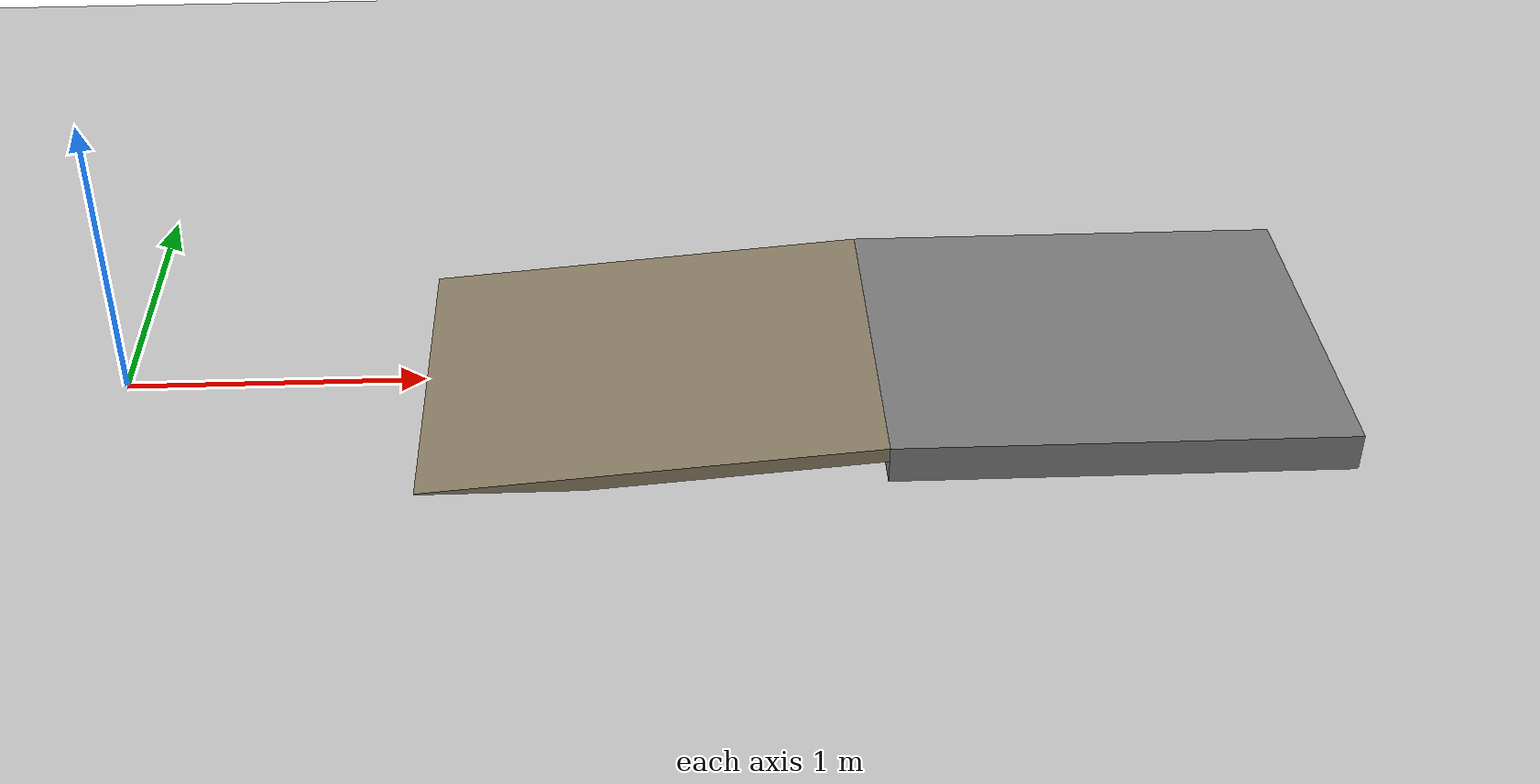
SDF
<?xml version="1.0"?>
<sdf version='1.6'>
  <world name='default'>
    <light name='sun' type='directional'>
      <cast_shadows>1</cast_shadows>
      <pose>0 0 10 0 0 0</pose>
      <diffuse>0.8 0.8 0.8 1</diffuse>
      <specular>0.2 0.2 0.2 1</specular>
      <direction>-0.5 0.5 -1</direction>
    </light>
    <model name='ground_plane'>
      <static>1</static>
      <link name='link'>
        <collision name='collision'>
          <geometry><plane><normal>0 0 1</normal><size>100 100</size></plane></geometry>
          <surface><friction><ode><mu>100</mu><mu2>50</mu2></ode></friction></surface>
        </collision>
        <visual name='visual'>
          <cast_shadows>0</cast_shadows>
          <geometry><plane><normal>0 0 1</normal><size>100 100</size></plane></geometry>
          <material><script><uri>file://media/materials/scripts/gazebo.material</uri><name>Gazebo/Grey</name></script></material>
        </visual>
      </link>
    </model>
    <!-- 斜坡 5.0°: 坡腳 x=1.0, 坡頂 x=2.494 高 0.131 m, 平台到 x=3.994 -->
    <model name='ramp'><static>1</static><pose>1.7493 0 0.0405 0 -0.08727 0</pose><link name='l'>
      <collision name='c'><geometry><box><size>1.5000 1.2000 0.0500</size></box></geometry><surface><friction><ode><mu>100</mu><mu2>50</mu2></ode></friction></surface></collision>
      <visual name='v'><geometry><box><size>1.5000 1.2000 0.0500</size></box></geometry><material><ambient>0.55 0.5 0.4 1</ambient><diffuse>0.55 0.5 0.4 1</diffuse></material></visual>
    </link></model>
    <model name='plateau'><static>1</static><pose>3.2443 0 0.0654 0 0.00000 0</pose><link name='l'>
      <collision name='c'><geometry><box><size>1.5000 1.2000 0.1307</size></box></geometry><surface><friction><ode><mu>100</mu><mu2>50</mu2></ode></friction></surface></collision>
      <visual name='v'><geometry><box><size>1.5000 1.2000 0.1307</size></box></geometry><material><ambient>0.5 0.5 0.5 1</ambient><diffuse>0.5 0.5 0.5 1</diffuse></material></visual>
    </link></model>
    <gravity>0 0 -9.8</gravity>
    <physics name='default_physics' default='0' type='ode'>
      <max_step_size>0.001</max_step_size>
      <real_time_factor>1</real_time_factor>
      <real_time_update_rate>1000</real_time_update_rate>
    </physics>
    <scene><ambient>0.4 0.4 0.4 1</ambient><background>0.7 0.7 0.7 1</background><shadows>1</shadows></scene>
    <gui fullscreen='0'>
      <camera name='user_camera'><pose>-1.0 -2.5 1.5 0 0.4 0.9</pose><view_controller>orbit</view_controller></camera>
    </gui>
  </world>
</sdf>
